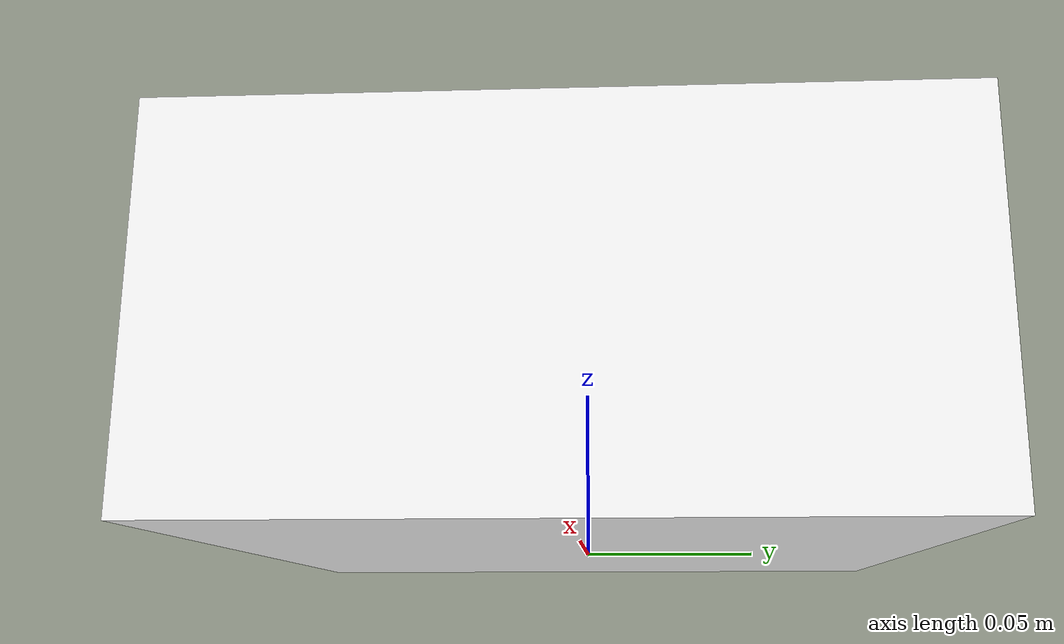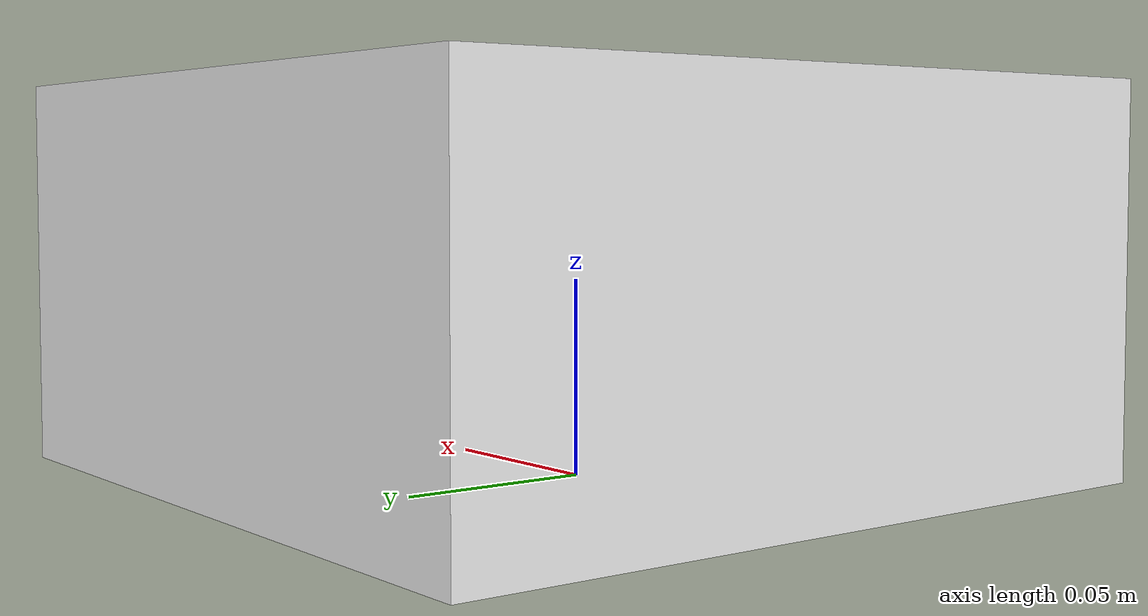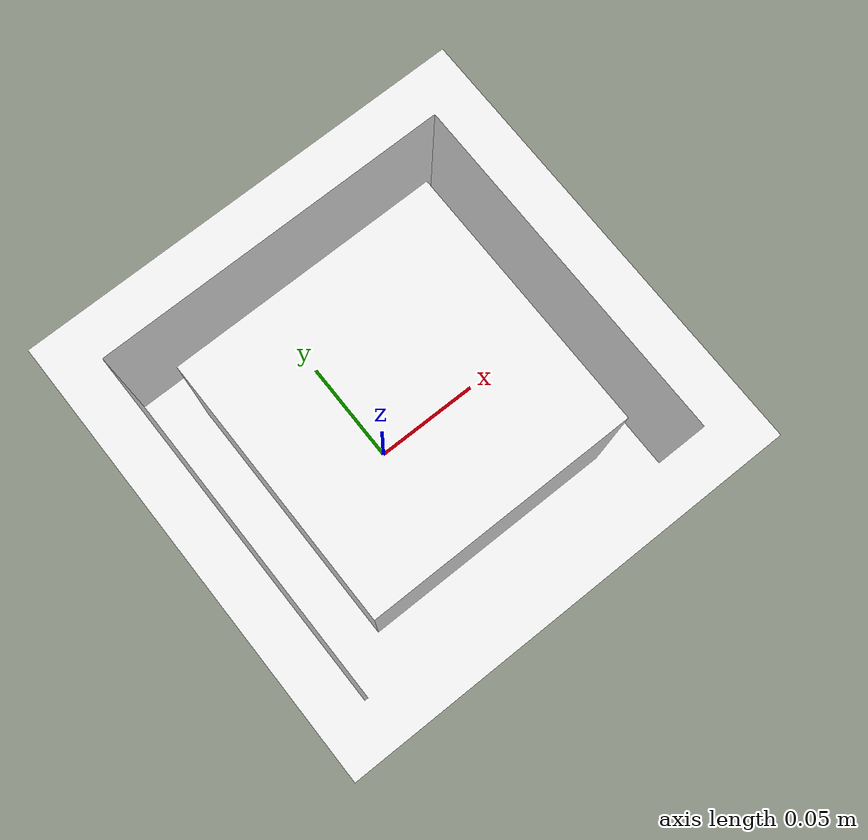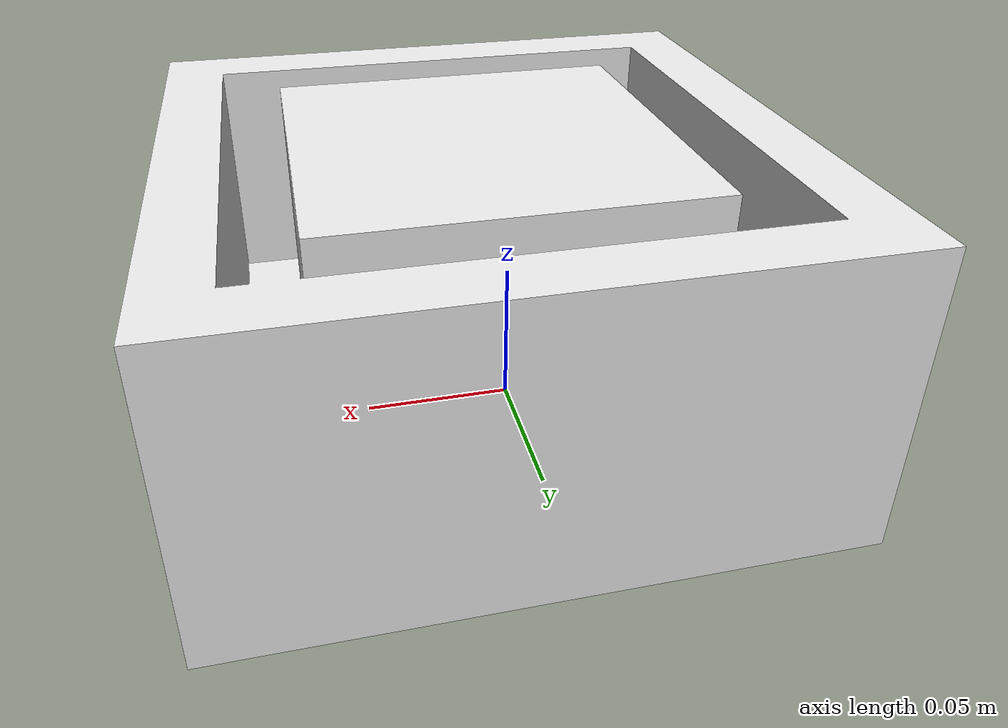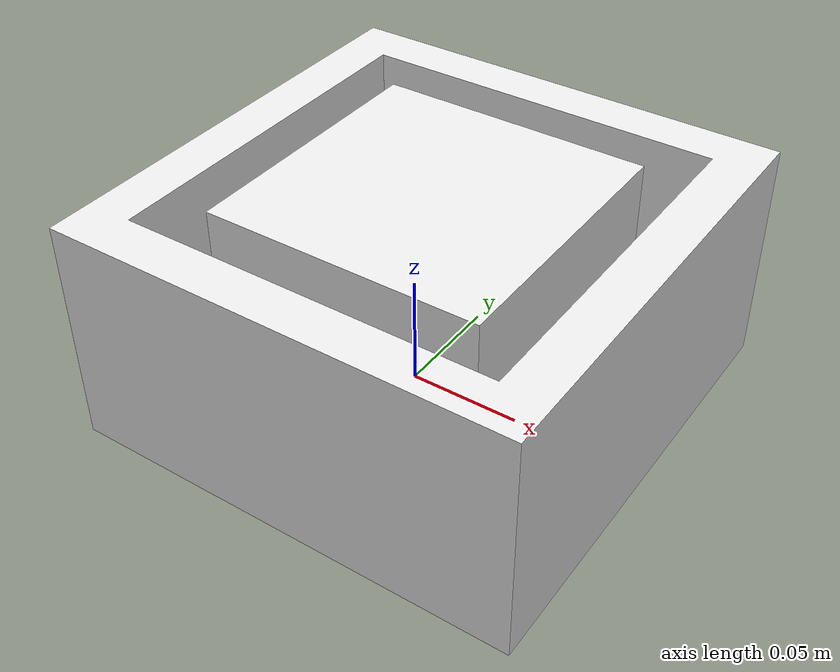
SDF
<?xml version='1.0'?>
<sdf version="1.4">
  <model name="big_square_path">
    <pose>0 0 0 0 0 0</pose>
    <static>true</static>
    <link name="link">
      <inertial>
        <mass>1.0</mass>
      </inertial>
      <collision name="collision">
        <geometry>
          <mesh>
            <uri>model://bigSquare/BigSquare.stl</uri>
            <scale>0.001 0.001 0.001</scale>
          </mesh>
        </geometry>
      </collision>
      <visual name="visual">
        <geometry>
          <mesh>
            <uri>model://bigSquare/BigSquare.stl</uri>
            <scale>0.001 0.001 0.001</scale>
          </mesh>
        </geometry>
        <material>
          <script>
            <uri>file://media/materials/scripts/gazebo.material</uri>
            <name>Gazebo/White</name>
          </script>
        </material>
      </visual>
    </link>
  </model>
</sdf>
